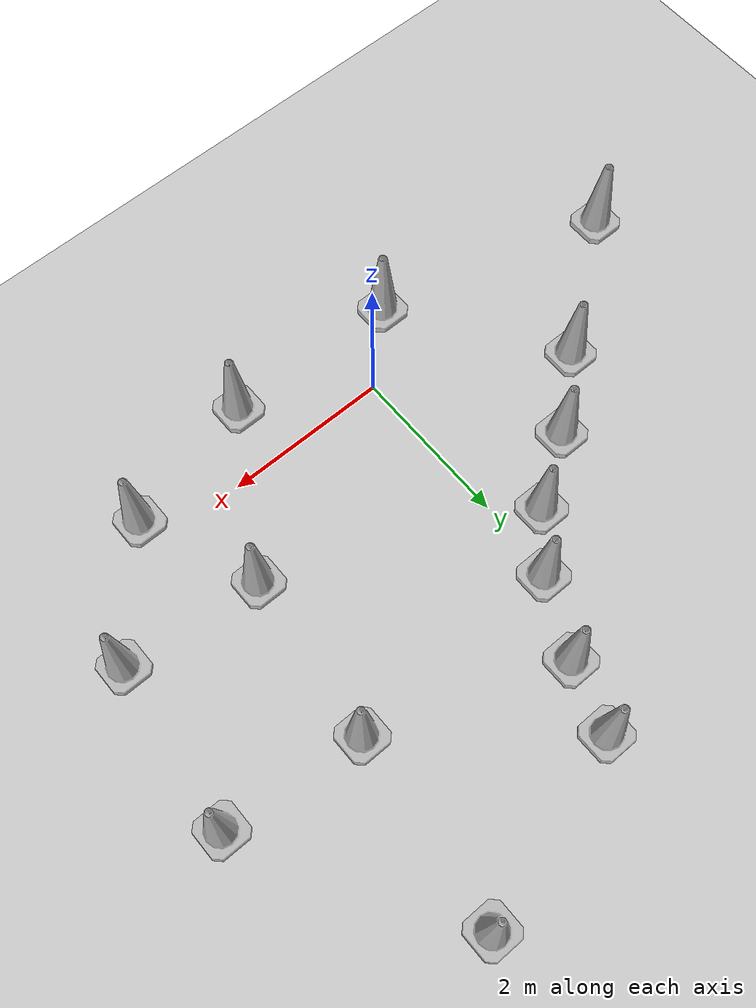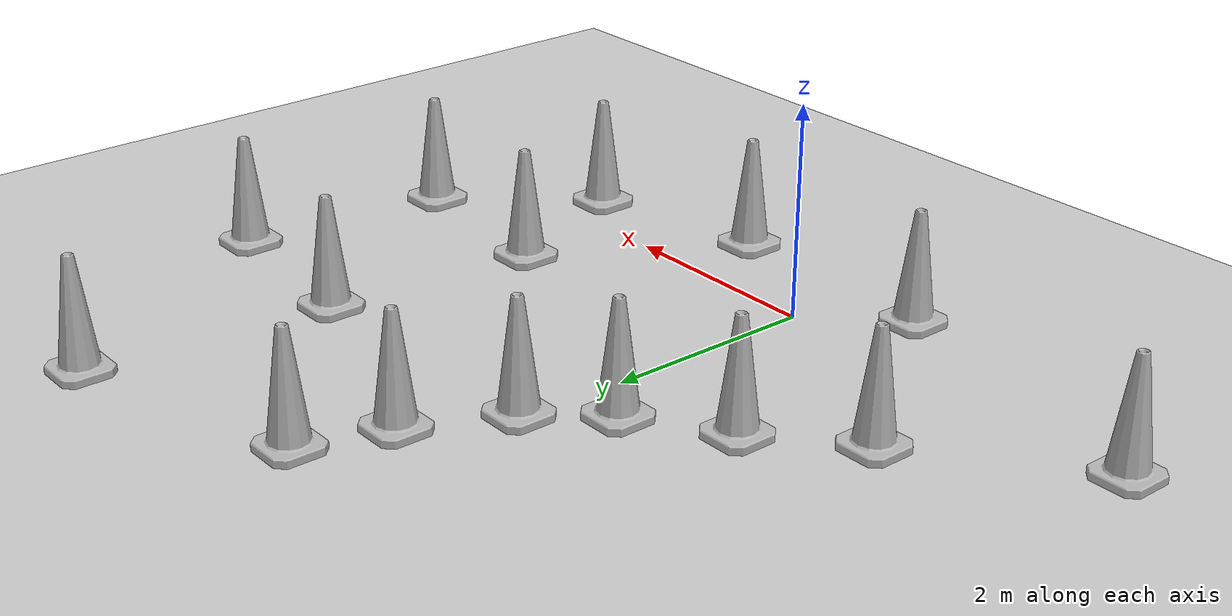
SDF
<sdf version="1.7">
 <world name="default">
  <light name="sun" type="directional">
   <pose>0 0 10 0 -0 0</pose>
   <diffuse>0.8 0.8 0.8 1</diffuse>
   <specular>0.2 0.2 0.2 1</specular>
   <attenuation>
    <range>1000</range>
    <constant>0.9</constant>
    <linear>0.01</linear>
    <quadratic>0.001</quadratic>
   </attenuation>
   <direction>-0.5 0.1 -0.9</direction>
   <spot><inner_angle>0</inner_angle><outer_angle>0</outer_angle><falloff>0</falloff></spot>
  </light>
  <model name="ground_plane">
   <static>1</static>
   <link name="link">
    <collision name="collision">
     <geometry><plane><normal>0 0 1</normal><size>100 100</size></plane></geometry>
     <surface>
      <contact><collide_bitmask>65535</collide_bitmask></contact>
      <friction><ode><mu>100</mu><mu2>50</mu2></ode></friction>
     </surface>
    </collision>
    <visual name="visual">
     <cast_shadows>0</cast_shadows>
     <geometry><plane><normal>0 0 1</normal><size>100 100</size></plane></geometry>
     <material>
      <script><uri>file://media/materials/scripts/gazebo.material</uri><name>Gazebo/Grey</name></script>
     </material>
    </visual>
   </link>
  </model>
  <gravity>0 0 -9.8</gravity>
  <magnetic_field>6e-06 2.3e-05 -4.2e-05</magnetic_field>
  <atmosphere type="adiabatic"/>
  <physics type="ode">
   <max_step_size>0.001</max_step_size>
   <real_time_factor>1</real_time_factor>
   <real_time_update_rate>1000</real_time_update_rate>
  </physics>
  <scene><ambient>0.4 0.4 0.4 1</ambient><background>0.7 0.7 0.7 1</background><shadows>1</shadows></scene>
  <spherical_coordinates>
   <surface_model>EARTH_WGS84</surface_model>
   <latitude_deg>0</latitude_deg>
   <longitude_deg>0</longitude_deg>
   <elevation>0</elevation>
   <heading_deg>0</heading_deg>
  </spherical_coordinates>
  <model name="Construction Cone">
   <link name="link">
    <collision name="collision">
     <geometry>
      <mesh><scale>10 10 10</scale><uri>model://construction_cone/meshes/construction_cone.dae</uri></mesh>
     </geometry>
    </collision>
    <visual name="visual">
     <geometry>
      <mesh><scale>10 10 10</scale><uri>model://construction_cone/meshes/construction_cone.dae</uri></mesh>
     </geometry>
    </visual>
    <inertial>
     <inertia><ixx>1</ixx><ixy>0</ixy><ixz>0</ixz><iyy>1</iyy><iyz>0</iyz><izz>1</izz></inertia>
     <mass>1</mass>
    </inertial>
   </link>
   <pose>-2.07083 1.16284 -1e-06 2e-06 2e-06 0</pose>
  </model>
  <model name="Construction Cone_0">
   <link name="link">
    <collision name="collision">
     <geometry>
      <mesh><scale>10 10 10</scale><uri>model://construction_cone/meshes/construction_cone.dae</uri></mesh>
     </geometry>
    </collision>
    <visual name="visual">
     <geometry>
      <mesh><scale>10 10 10</scale><uri>model://construction_cone/meshes/construction_cone.dae</uri></mesh>
     </geometry>
    </visual>
    <inertial>
     <inertia><ixx>1</ixx><ixy>0</ixy><ixz>0</ixz><iyy>1</iyy><iyz>0</iyz><izz>1</izz></inertia>
     <mass>1</mass>
    </inertial>
   </link>
   <pose>-1.26362 1.86427 -1e-05 0 -0 0</pose>
  </model>
  <model name="Construction Cone_0_clone">
   <link name="link">
    <collision name="collision">
     <geometry>
      <mesh><scale>10 10 10</scale><uri>model://construction_cone/meshes/construction_cone.dae</uri></mesh>
     </geometry>
    </collision>
    <visual name="visual">
     <geometry>
      <mesh><scale>10 10 10</scale><uri>model://construction_cone/meshes/construction_cone.dae</uri></mesh>
     </geometry>
    </visual>
    <inertial>
     <inertia><ixx>1</ixx><ixy>0</ixy><ixz>0</ixz><iyy>1</iyy><iyz>0</iyz><izz>1</izz></inertia>
     <mass>1</mass>
    </inertial>
   </link>
   <pose>-0.445276 2.40518 -1e-05 0 -0 0</pose>
  </model>
  <model name="Construction Cone_0_clone_0">
   <link name="link">
    <collision name="collision">
     <geometry>
      <mesh><scale>10 10 10</scale><uri>model://construction_cone/meshes/construction_cone.dae</uri></mesh>
     </geometry>
    </collision>
    <visual name="visual">
     <geometry>
      <mesh><scale>10 10 10</scale><uri>model://construction_cone/meshes/construction_cone.dae</uri></mesh>
     </geometry>
    </visual>
    <inertial>
     <inertia><ixx>1</ixx><ixy>0</ixy><ixz>0</ixz><iyy>1</iyy><iyz>0</iyz><izz>1</izz></inertia>
     <mass>1</mass>
    </inertial>
   </link>
   <pose>0.079983 3.0046 -3e-06 -4e-06 -1e-06 0</pose>
  </model>
  <model name="Construction Cone_0_clone_1">
   <link name="link">
    <collision name="collision">
     <geometry>
      <mesh><scale>10 10 10</scale><uri>model://construction_cone/meshes/construction_cone.dae</uri></mesh>
     </geometry>
    </collision>
    <visual name="visual">
     <geometry>
      <mesh><scale>10 10 10</scale><uri>model://construction_cone/meshes/construction_cone.dae</uri></mesh>
     </geometry>
    </visual>
    <inertial>
     <inertia><ixx>1</ixx><ixy>0</ixy><ixz>0</ixz><iyy>1</iyy><iyz>0</iyz><izz>1</izz></inertia>
     <mass>1</mass>
    </inertial>
   </link>
   <pose>0.514987 3.89814 0 -0 -0 -0</pose>
  </model>
  <model name="Construction Cone_0_clone_2">
   <link name="link">
    <collision name="collision">
     <geometry>
      <mesh><scale>10 10 10</scale><uri>model://construction_cone/meshes/construction_cone.dae</uri></mesh>
     </geometry>
    </collision>
    <visual name="visual">
     <geometry>
      <mesh><scale>10 10 10</scale><uri>model://construction_cone/meshes/construction_cone.dae</uri></mesh>
     </geometry>
    </visual>
    <inertial>
     <inertia><ixx>1</ixx><ixy>0</ixy><ixz>0</ixz><iyy>1</iyy><iyz>0</iyz><izz>1</izz></inertia>
     <mass>1</mass>
    </inertial>
   </link>
   <pose>0.780541 4.71582 -0 0 -0 0</pose>
  </model>
  <model name="Construction Cone_0_clone_3">
   <link name="link">
    <collision name="collision">
     <geometry>
      <mesh><scale>10 10 10</scale><uri>model://construction_cone/meshes/construction_cone.dae</uri></mesh>
     </geometry>
    </collision>
    <visual name="visual">
     <geometry>
      <mesh><scale>10 10 10</scale><uri>model://construction_cone/meshes/construction_cone.dae</uri></mesh>
     </geometry>
    </visual>
    <inertial>
     <inertia><ixx>1</ixx><ixy>0</ixy><ixz>0</ixz><iyy>1</iyy><iyz>0</iyz><izz>1</izz></inertia>
     <mass>1</mass>
    </inertial>
   </link>
   <pose>2.738 3.09351 -0 0 -0 0</pose>
  </model>
  <model name="Construction Cone_0_clone_4">
   <link name="link">
    <collision name="collision">
     <geometry>
      <mesh><scale>10 10 10</scale><uri>model://construction_cone/meshes/construction_cone.dae</uri></mesh>
     </geometry>
    </collision>
    <visual name="visual">
     <geometry>
      <mesh><scale>10 10 10</scale><uri>model://construction_cone/meshes/construction_cone.dae</uri></mesh>
     </geometry>
    </visual>
    <inertial>
     <inertia><ixx>1</ixx><ixy>0</ixy><ixz>0</ixz><iyy>1</iyy><iyz>0</iyz><izz>1</izz></inertia>
     <mass>1</mass>
    </inertial>
   </link>
   <pose>2.51647 1.06082 -0 0 -1e-06 0</pose>
  </model>
  <model name="Construction Cone_0_clone_5">
   <link name="link">
    <collision name="collision">
     <geometry>
      <mesh><scale>10 10 10</scale><uri>model://construction_cone/meshes/construction_cone.dae</uri></mesh>
     </geometry>
    </collision>
    <visual name="visual">
     <geometry>
      <mesh><scale>10 10 10</scale><uri>model://construction_cone/meshes/construction_cone.dae</uri></mesh>
     </geometry>
    </visual>
    <inertial>
     <inertia><ixx>1</ixx><ixy>0</ixy><ixz>0</ixz><iyy>1</iyy><iyz>0</iyz><izz>1</izz></inertia>
     <mass>1</mass>
    </inertial>
   </link>
   <pose>4.2034 0.895426 -0 0 -0 0</pose>
  </model>
  <model name="Construction Cone_0_clone_6">
   <link name="link">
    <collision name="collision">
     <geometry>
      <mesh><scale>10 10 10</scale><uri>model://construction_cone/meshes/construction_cone.dae</uri></mesh>
     </geometry>
    </collision>
    <visual name="visual">
     <geometry>
      <mesh><scale>10 10 10</scale><uri>model://construction_cone/meshes/construction_cone.dae</uri></mesh>
     </geometry>
    </visual>
    <inertial>
     <inertia><ixx>1</ixx><ixy>0</ixy><ixz>0</ixz><iyy>1</iyy><iyz>0</iyz><izz>1</izz></inertia>
     <mass>1</mass>
    </inertial>
   </link>
   <pose>4.44211 2.92259 0 -0 -0 -0</pose>
  </model>
  <model name="Construction Cone_0_clone_7">
   <link name="link">
    <collision name="collision">
     <geometry>
      <mesh><scale>10 10 10</scale><uri>model://construction_cone/meshes/construction_cone.dae</uri></mesh>
     </geometry>
    </collision>
    <visual name="visual">
     <geometry>
      <mesh><scale>10 10 10</scale><uri>model://construction_cone/meshes/construction_cone.dae</uri></mesh>
     </geometry>
    </visual>
    <inertial>
     <inertia><ixx>1</ixx><ixy>0</ixy><ixz>0</ixz><iyy>1</iyy><iyz>0</iyz><izz>1</izz></inertia>
     <mass>1</mass>
    </inertial>
   </link>
   <pose>1.38141 -0.775355 0 -0 -0 -0</pose>
  </model>
  <model name="Construction Cone_0_clone_8">
   <link name="link">
    <collision name="collision">
     <geometry>
      <mesh><scale>10 10 10</scale><uri>model://construction_cone/meshes/construction_cone.dae</uri></mesh>
     </geometry>
    </collision>
    <visual name="visual">
     <geometry>
      <mesh><scale>10 10 10</scale><uri>model://construction_cone/meshes/construction_cone.dae</uri></mesh>
     </geometry>
    </visual>
    <inertial>
     <inertia><ixx>1</ixx><ixy>0</ixy><ixz>0</ixz><iyy>1</iyy><iyz>0</iyz><izz>1</izz></inertia>
     <mass>1</mass>
    </inertial>
   </link>
   <pose>-0.761044 -0.729213 -0 1e-06 -0 0</pose>
  </model>
  <model name="Construction Cone_0_clone_9">
   <link name="link">
    <collision name="collision">
     <geometry>
      <mesh><scale>10 10 10</scale><uri>model://construction_cone/meshes/construction_cone.dae</uri></mesh>
     </geometry>
    </collision>
    <visual name="visual">
     <geometry>
      <mesh><scale>10 10 10</scale><uri>model://construction_cone/meshes/construction_cone.dae</uri></mesh>
     </geometry>
    </visual>
    <inertial>
     <inertia><ixx>1</ixx><ixy>0</ixy><ixz>0</ixz><iyy>1</iyy><iyz>0</iyz><izz>1</izz></inertia>
     <mass>1</mass>
    </inertial>
   </link>
   <pose>-3.59185 0 -0 0 -1e-06 0</pose>
  </model>
  <model name="Construction Cone_0_clone_10">
   <link name="link">
    <collision name="collision">
     <geometry>
      <mesh><scale>10 10 10</scale><uri>model://construction_cone/meshes/construction_cone.dae</uri></mesh>
     </geometry>
    </collision>
    <visual name="visual">
     <geometry>
      <mesh><scale>10 10 10</scale><uri>model://construction_cone/meshes/construction_cone.dae</uri></mesh>
     </geometry>
    </visual>
    <inertial>
     <inertia><ixx>1</ixx><ixy>0</ixy><ixz>0</ixz><iyy>1</iyy><iyz>0</iyz><izz>1</izz></inertia>
     <mass>1</mass>
    </inertial>
   </link>
   <pose>3.08735 -0.360844 -0 0 -0 0</pose>
  </model>
  <model name="Construction Cone_0_clone_11">
   <link name="link">
    <collision name="collision">
     <geometry>
      <mesh><scale>10 10 10</scale><uri>model://construction_cone/meshes/construction_cone.dae</uri></mesh>
     </geometry>
    </collision>
    <visual name="visual">
     <geometry>
      <mesh><scale>10 10 10</scale><uri>model://construction_cone/meshes/construction_cone.dae</uri></mesh>
     </geometry>
    </visual>
    <inertial>
     <inertia><ixx>1</ixx><ixy>0</ixy><ixz>0</ixz><iyy>1</iyy><iyz>0</iyz><izz>1</izz></inertia>
     <mass>1</mass>
    </inertial>
   </link>
   <pose>3 5.40197 -0 0 -0 0</pose>
  </model>
 </world>
</sdf>
